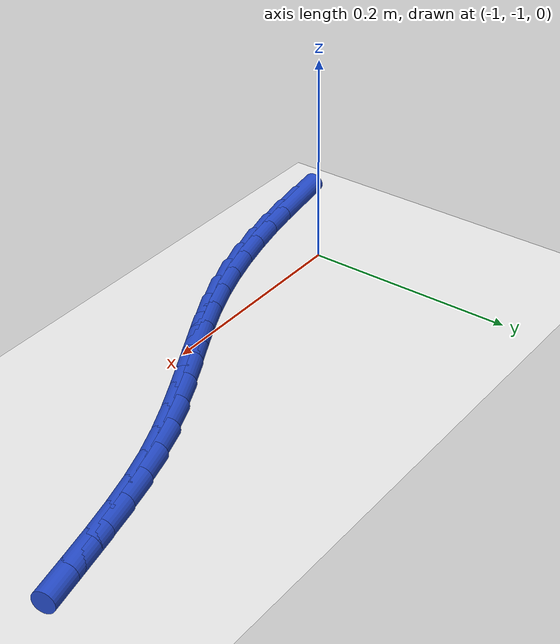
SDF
<sdf version="1.6">
 <world name="default">
  <model name="ground_plane">
   <static>1</static>
   <link name="link">
    <collision name="collision">
     <geometry><plane><normal>0 0 1</normal><size>100 100</size></plane></geometry>
     <surface><friction><ode><mu>100</mu><mu2>50</mu2></ode></friction></surface>
    </collision>
    <visual name="visual">
     <cast_shadows>0</cast_shadows>
     <geometry><plane><normal>0 0 1</normal><size>100 100</size></plane></geometry>
     <material>
      <script><uri>file://media/materials/scripts/gazebo.material</uri><name>Gazebo/WhiteGlow</name></script>
     </material>
    </visual>
   </link>
  </model>
  <model name="line">
   <link name="link_174">
    <pose>-1.0581478046250425 -1.0698910135217568 0.01 0 1.57 0.15302511661908216</pose>
    <collision name="collision">
     <geometry><cylinder><radius>0.01</radius><length>0.08</length></cylinder></geometry>
    </collision>
    <visual name="visual">
     <material>
      <script><name>Gazebo/Blue</name><uri>file://media/materials/scripts/gazebo.material</uri></script>
     </material>
     <geometry><cylinder><radius>0.01</radius><length>0.08</length></cylinder></geometry>
    </visual>
   </link>
   <link name="link_175">
    <pose>-1.0284317043286566 -1.0653078738550847 0.01 0 1.57 0.18352624185516425</pose>
    <collision name="collision">
     <geometry><cylinder><radius>0.01</radius><length>0.08</length></cylinder></geometry>
    </collision>
    <visual name="visual">
     <material>
      <script><name>Gazebo/Blue</name><uri>file://media/materials/scripts/gazebo.material</uri></script>
     </material>
     <geometry><cylinder><radius>0.01</radius><length>0.08</length></cylinder></geometry>
    </visual>
   </link>
   <link name="link_176">
    <pose>-0.9989725477098187 -1.0598398157620241 0.01 0 1.57 0.21830653197275707</pose>
    <collision name="collision">
     <geometry><cylinder><radius>0.01</radius><length>0.08</length></cylinder></geometry>
    </collision>
    <visual name="visual">
     <material>
      <script><name>Gazebo/Blue</name><uri>file://media/materials/scripts/gazebo.material</uri></script>
     </material>
     <geometry><cylinder><radius>0.01</radius><length>0.08</length></cylinder></geometry>
    </visual>
   </link>
   <link name="link_177">
    <pose>-0.9698399505205486 -1.0533769838275668 0.01 0 1.57 0.25749440284656855</pose>
    <collision name="collision">
     <geometry><cylinder><radius>0.01</radius><length>0.08</length></cylinder></geometry>
    </collision>
    <visual name="visual">
     <material>
      <script><name>Gazebo/Blue</name><uri>file://media/materials/scripts/gazebo.material</uri></script>
     </material>
     <geometry><cylinder><radius>0.01</radius><length>0.08</length></cylinder></geometry>
    </visual>
   </link>
   <link name="link_178">
    <pose>-0.9411035285128662 -1.0458095226367061 0.01 0 1.57 0.30118806630274925</pose>
    <collision name="collision">
     <geometry><cylinder><radius>0.01</radius><length>0.08</length></cylinder></geometry>
    </collision>
    <visual name="visual">
     <material>
      <script><name>Gazebo/Blue</name><uri>file://media/materials/scripts/gazebo.material</uri></script>
     </material>
     <geometry><cylinder><radius>0.01</radius><length>0.08</length></cylinder></geometry>
    </visual>
   </link>
   <link name="link_179">
    <pose>-0.9128328974387909 -1.0370275767744337 0.01 0 1.57 0.3494316100006764</pose>
    <collision name="collision">
     <geometry><cylinder><radius>0.01</radius><length>0.08</length></cylinder></geometry>
    </collision>
    <visual name="visual">
     <material>
      <script><name>Gazebo/Blue</name><uri>file://media/materials/scripts/gazebo.material</uri></script>
     </material>
     <geometry><cylinder><radius>0.01</radius><length>0.08</length></cylinder></geometry>
    </visual>
   </link>
   <link name="link_180">
    <pose>-0.8850976730503445 -1.0269212908257432 0.01 0 1.57 0.4016764828970154</pose>
    <collision name="collision">
     <geometry><cylinder><radius>0.01</radius><length>0.08</length></cylinder></geometry>
    </collision>
    <visual name="visual">
     <material>
      <script><name>Gazebo/Blue</name><uri>file://media/materials/scripts/gazebo.material</uri></script>
     </material>
     <geometry><cylinder><radius>0.01</radius><length>0.08</length></cylinder></geometry>
    </visual>
   </link>
   <link name="link_181">
    <pose>-0.8579604395331465 -1.0153941868853897 0.01 0 1.57 0.4475755639696158</pose>
    <collision name="collision">
     <geometry><cylinder><radius>0.01</radius><length>0.08</length></cylinder></geometry>
    </collision>
    <visual name="visual">
     <material>
      <script><name>Gazebo/Blue</name><uri>file://media/materials/scripts/gazebo.material</uri></script>
     </material>
     <geometry><cylinder><radius>0.01</radius><length>0.08</length></cylinder></geometry>
    </visual>
   </link>
   <link name="link_182">
    <pose>-0.8313436827986461 -1.0026163231119187 0.01 0 1.57 0.47758974223635536</pose>
    <collision name="collision">
     <geometry><cylinder><radius>0.01</radius><length>0.08</length></cylinder></geometry>
    </collision>
    <visual name="visual">
     <material>
      <script><name>Gazebo/Blue</name><uri>file://media/materials/scripts/gazebo.material</uri></script>
     </material>
     <geometry><cylinder><radius>0.01</radius><length>0.08</length></cylinder></geometry>
    </visual>
   </link>
   <link name="link_183">
    <pose>-0.8050408464577069 -0.989003259809167 0.01 0 1.57 0.491443503855686</pose>
    <collision name="collision">
     <geometry><cylinder><radius>0.01</radius><length>0.08</length></cylinder></geometry>
    </collision>
    <visual name="visual">
     <material>
      <script><name>Gazebo/Blue</name><uri>file://media/materials/scripts/gazebo.material</uri></script>
     </material>
     <geometry><cylinder><radius>0.01</radius><length>0.08</length></cylinder></geometry>
    </visual>
   </link>
   <link name="link_184">
    <pose>-0.7788405584346154 -0.974979719093649 0.01 0 1.57 0.48929925095342813</pose>
    <collision name="collision">
     <geometry><cylinder><radius>0.01</radius><length>0.08</length></cylinder></geometry>
    </collision>
    <visual name="visual">
     <material>
      <script><name>Gazebo/Blue</name><uri>file://media/materials/scripts/gazebo.material</uri></script>
     </material>
     <geometry><cylinder><radius>0.01</radius><length>0.08</length></cylinder></geometry>
    </visual>
   </link>
   <link name="link_185">
    <pose>-0.7525314466536606 -0.9609704230818806 0.01 0 1.57 0.471299095850089</pose>
    <collision name="collision">
     <geometry><cylinder><radius>0.01</radius><length>0.08</length></cylinder></geometry>
    </collision>
    <visual name="visual">
     <material>
      <script><name>Gazebo/Blue</name><uri>file://media/materials/scripts/gazebo.material</uri></script>
     </material>
     <geometry><cylinder><radius>0.01</radius><length>0.08</length></cylinder></geometry>
    </visual>
   </link>
   <link name="link_186">
    <pose>-0.7259021390391288 -0.947400093890376 0.01 0 1.57 0.43758105492620414</pose>
    <collision name="collision">
     <geometry><cylinder><radius>0.01</radius><length>0.08</length></cylinder></geometry>
    </collision>
    <visual name="visual">
     <material>
      <script><name>Gazebo/Blue</name><uri>file://media/materials/scripts/gazebo.material</uri></script>
     </material>
     <geometry><cylinder><radius>0.01</radius><length>0.08</length></cylinder></geometry>
    </visual>
   </link>
   <link name="link_187">
    <pose>-0.6987412635153073 -0.9346934536356503 0.01 0 1.57 0.38841185982623855</pose>
    <collision name="collision">
     <geometry><cylinder><radius>0.01</radius><length>0.08</length></cylinder></geometry>
    </collision>
    <visual name="visual">
     <material>
      <script><name>Gazebo/Blue</name><uri>file://media/materials/scripts/gazebo.material</uri></script>
     </material>
     <geometry><cylinder><radius>0.01</radius><length>0.08</length></cylinder></geometry>
    </visual>
   </link>
   <link name="link_188">
    <pose>-0.6708374489923774 -0.9232752227044567 0.01 0 1.57 0.32961452983562084</pose>
    <collision name="collision">
     <geometry><cylinder><radius>0.01</radius><length>0.08</length></cylinder></geometry>
    </collision>
    <visual name="visual">
     <material>
      <script><name>Gazebo/Blue</name><uri>file://media/materials/scripts/gazebo.material</uri></script>
     </material>
     <geometry><cylinder><radius>0.01</radius><length>0.08</length></cylinder></geometry>
    </visual>
   </link>
   <link name="link_189">
    <pose>-0.6420590231323757 -0.9134302892814437 0.01 0 1.57 0.2808899771925339</pose>
    <collision name="collision">
     <geometry><cylinder><radius>0.01</radius><length>0.08</length></cylinder></geometry>
    </collision>
    <visual name="visual">
     <material>
      <script><name>Gazebo/Blue</name><uri>file://media/materials/scripts/gazebo.material</uri></script>
     </material>
     <geometry><cylinder><radius>0.01</radius><length>0.08</length></cylinder></geometry>
    </visual>
   </link>
   <link name="link_190">
    <pose>-0.6125712656819623 -0.9049225363542214 0.01 0 1.57 0.24615130005917482</pose>
    <collision name="collision">
     <geometry><cylinder><radius>0.01</radius><length>0.08</length></cylinder></geometry>
    </collision>
    <visual name="visual">
     <material>
      <script><name>Gazebo/Blue</name><uri>file://media/materials/scripts/gazebo.material</uri></script>
     </material>
     <geometry><cylinder><radius>0.01</radius><length>0.08</length></cylinder></geometry>
    </visual>
   </link>
   <link name="link_191">
    <pose>-0.5826086030492647 -0.8973945284491133 0.01 0 1.57 0.22477797369955477</pose>
    <collision name="collision">
     <geometry><cylinder><radius>0.01</radius><length>0.08</length></cylinder></geometry>
    </collision>
    <visual name="visual">
     <material>
      <script><name>Gazebo/Blue</name><uri>file://media/materials/scripts/gazebo.material</uri></script>
     </material>
     <geometry><cylinder><radius>0.01</radius><length>0.08</length></cylinder></geometry>
    </visual>
   </link>
   <link name="link_192">
    <pose>-0.5524054616424103 -0.8904888300924431 0.01 0 1.57 0.21638616480128314</pose>
    <collision name="collision">
     <geometry><cylinder><radius>0.01</radius><length>0.08</length></cylinder></geometry>
    </collision>
    <visual name="visual">
     <material>
      <script><name>Gazebo/Blue</name><uri>file://media/materials/scripts/gazebo.material</uri></script>
     </material>
     <geometry><cylinder><radius>0.01</radius><length>0.08</length></cylinder></geometry>
    </visual>
   </link>
  </model>
 </world>
</sdf>
